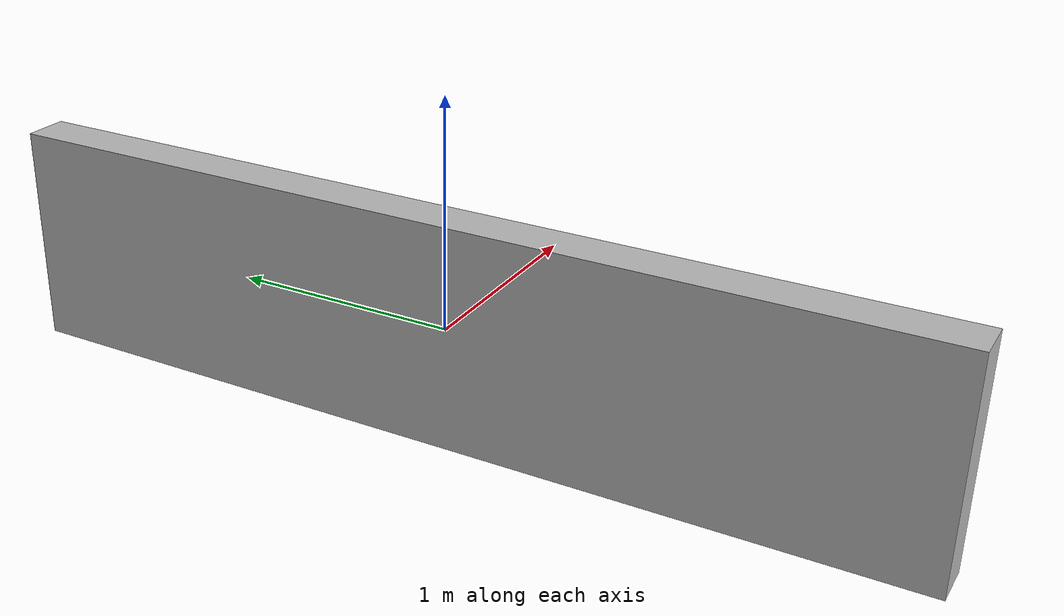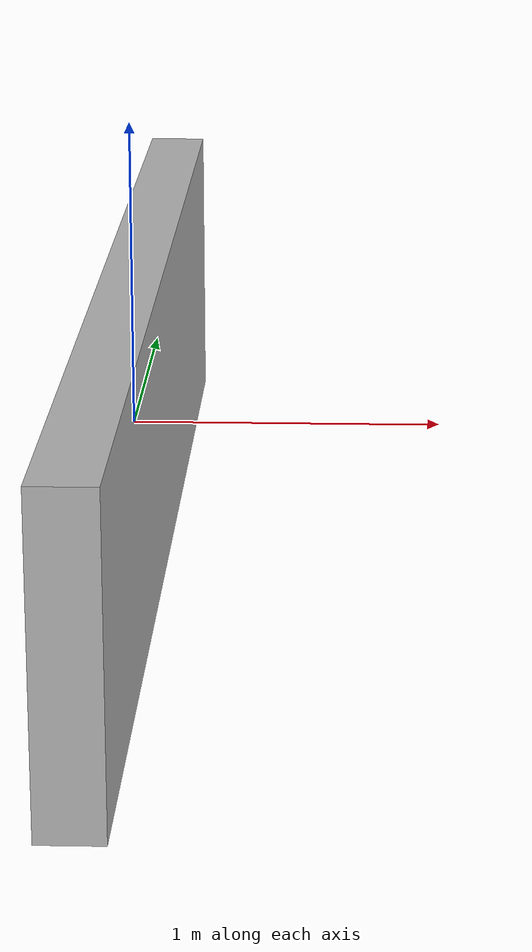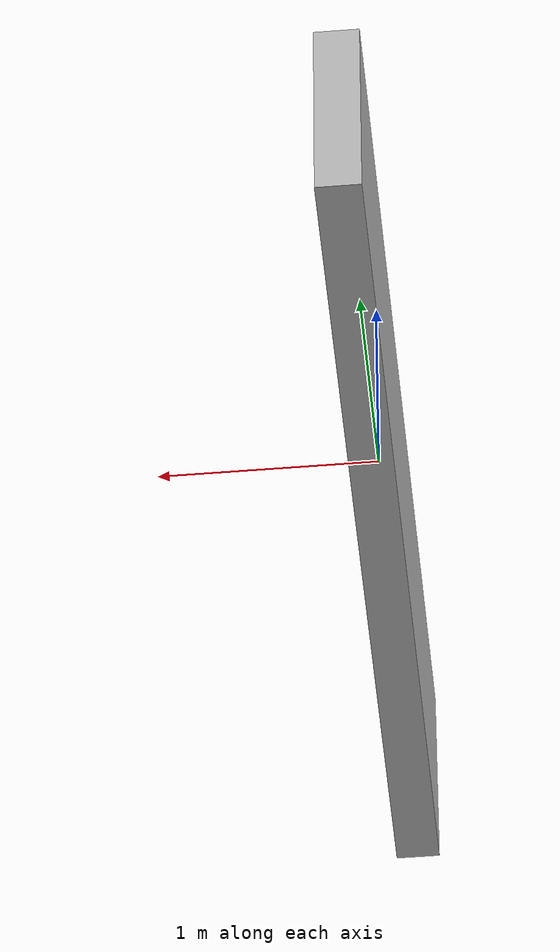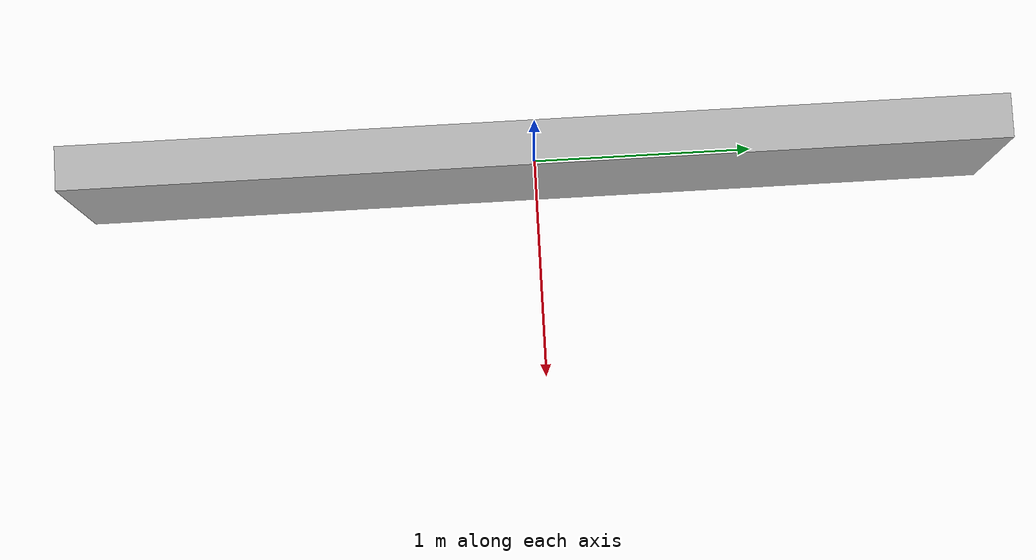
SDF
<?xml version='1.0'?>
<sdf version='1.6'>
  <model name='room_2_wall_right'>
    <static>true</static>
    <link name='link'>
      <collision name='collision'>
        <pose>0 0 0 0 0 0</pose>
        <geometry>
          <box>
            <size>0.2 4.25 1.0</size>
          </box>
        </geometry>
      </collision>
      <visual name='visual'>
        <pose>0 0 0 0 0 0</pose>
        <geometry>
          <box>
            <size>0.2 4.25 1.0</size>
          </box>
        </geometry>
      </visual>
    </link>
  </model>
</sdf>
